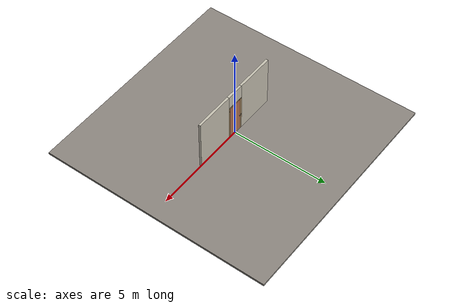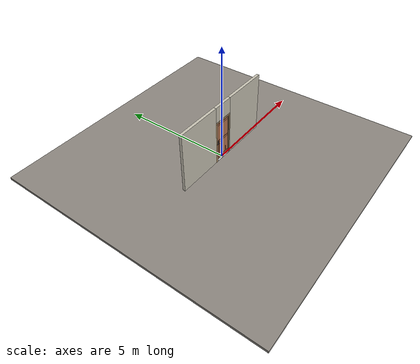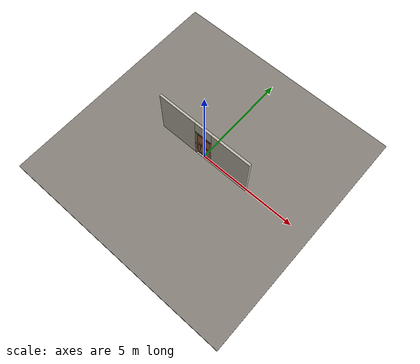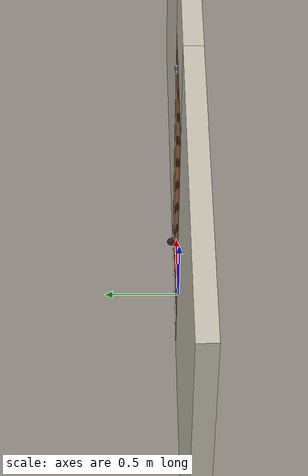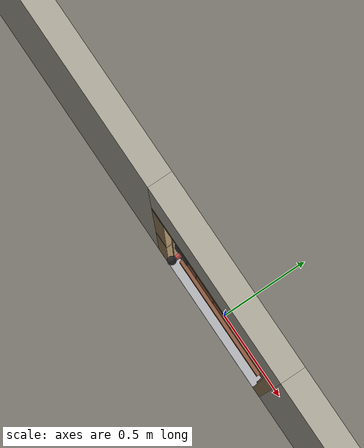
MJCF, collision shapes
<?xml version="1.0" ?>
<mujoco model="db0436_swing_single_full">
  <compiler angle="radian" meshdir="../../hardware" texturedir="../../textures" autolimits="true" inertiafromgeom="false"/>
  <option timestep="0.002" integrator="implicitfast" cone="elliptic" impratio="10" noslip_iterations="3">
    <flag multiccd="enable"/>
  </option>
  <size memory="16M"/>
  <default>
    <geom condim="4" solref="0.005 1" solimp="0.95 0.99 0.001"/>
    <joint solreflimit="0.005 1" solimplimit="0.95 0.99 0.001"/>
    <tendon solreflimit="0.005 1"/>
    <equality solref="0.002 1"/>
  </default>
  <visual>
    <headlight ambient="0.4 0.4 0.4" diffuse="0.7 0.7 0.7" specular="0.2 0.2 0.2"/>
    <quality shadowsize="4096"/>
    <map znear="0.01" zfar="60"/>
  </visual>
  <asset>
    <mesh name="knob_3926f4c53b" file="knob_3926f4c53b.obj"/>
    <mesh name="peephole_f829311a59" file="peephole_f829311a59.obj"/>
    <mesh name="strap_hinge_78d1bbb966" file="strap_hinge_78d1bbb966.obj"/>
    <material name="mat_floor" rgba="0.55 0.53 0.5 1" specular="0.2" shininess="0.15" reflectance="0"/>
    <material name="mat_wall" rgba="0.78 0.76 0.7 1" specular="0.2" shininess="0.1" reflectance="0"/>
    <material name="mat_leaf" rgba="0.7 0.45 0.32 1" specular="0.2" shininess="0.4" reflectance="0"/>
    <material name="mat_leaf_brace" rgba="0.63 0.405 0.288 1" specular="0.2" shininess="0.2" reflectance="0"/>
    <material name="mat_hinge" rgba="0.65 0.66 0.68 1" specular="0.74" shininess="0.5" reflectance="0.36"/>
    <material name="mat_op_cast_iron" rgba="0.15 0.15 0.16 1" specular="0.5" shininess="0.2" reflectance="0.2"/>
    <material name="mat_rim_case" rgba="0.15 0.15 0.16 1" specular="0.5" shininess="0.2" reflectance="0.2"/>
    <material name="mat_trim" rgba="0.85 0.66 0.3 1" specular="0.8" shininess="0.75" reflectance="0.4"/>
    <material name="mat_bolt" rgba="0.85 0.66 0.3 1" specular="0.8" shininess="0.75" reflectance="0.4"/>
    <material name="mat_frame" rgba="0.7 0.58 0.42 1" specular="0.2" shininess="0.5" reflectance="0"/>
    <material name="mat_threshold" rgba="0.8 0.81 0.83 1" specular="0.8" shininess="0.6" reflectance="0.4"/>
    <material name="mat_peephole" rgba="0.85 0.66 0.3 1" specular="0.8" shininess="0.75" reflectance="0.4"/>
    <texture name="skybox" type="skybox" builtin="gradient" rgb1="0.6 0.7 0.85" rgb2="0.9 0.92 0.95" width="256" height="256"/>
  </asset>
  <worldbody>
    <light name="sun" pos="1.5 -2.5 4" dir="-0.3 0.5 -0.8" directional="true" diffuse="0.8 0.8 0.8" specular="0.3 0.3 0.3" castshadow="true"/>
    <light name="fill" pos="-1.5 2.5 3" dir="0.3 -0.5 -0.7" directional="true" diffuse="0.35 0.35 0.4" castshadow="false"/>
    <camera name="robot_view" pos="0 -2.446938 1.633663" xyaxes="1 0 0 0 0.26963 0.962964" fovy="52"/>
    <camera name="far_view" pos="0 2.389937 1.633663" xyaxes="-1 0 0 0 -0.26963 0.962964" fovy="52"/>
    <camera name="iso" pos="-1.838012 -2.059988 2.020612" xyaxes="0.741536 -0.670913 0 0.242917 0.268487 0.932151" fovy="46"/>
    <camera name="detail_handle" pos="-0.14 -0.8995 1.194" xyaxes="0.97561 0.219512 0 -0.070934 0.315262 0.94635" fovy="38"/>
    <geom name="floor" type="box" size="6 6 0.05" pos="0 0 -0.05" material="mat_floor" group="0" contype="1" conaffinity="1" friction="0.8 0.005 0.0001" density="2400"/>
    <geom name="wall_left" type="box" size="1.0125 0.0575 1.35" pos="-1.4875 -0.0285 1.35" material="mat_wall" group="0" contype="1" conaffinity="1" friction="0.6 0.005 0.0001" density="800"/>
    <geom name="wall_right" type="box" size="1.0275 0.0575 1.35" pos="1.4725 -0.0285 1.35" material="mat_wall" group="0" contype="1" conaffinity="1" friction="0.6 0.005 0.0001" density="800"/>
    <geom name="wall_header" type="box" size="0.46 0.0575 0.3485" pos="-0.015 -0.0285 2.3515" material="mat_wall" group="0" contype="1" conaffinity="1" friction="0.6 0.005 0.0001" density="800"/>
    <geom name="hinge_pintle_0" type="cylinder" size="0.008 0.02" pos="0.382 0.029 0.141" material="mat_hinge" group="1" contype="0" conaffinity="0" density="7850"/>
    <geom name="hinge_pintle_1" type="cylinder" size="0.008 0.02" pos="0.382 0.029 1.733" material="mat_hinge" group="1" contype="0" conaffinity="0" density="7850"/>
    <geom name="jamb_hinge" type="box" size="0.03 0.0575 0.9565" pos="0.415 -0.0285 0.9565" material="mat_frame" group="0" contype="1" conaffinity="1" friction="0.6 0.005 0.0001" density="750"/>
    <geom name="strike_914_wall_n" type="box" size="0.045 0.039075 0.0167" pos="-0.43 -0.046925 0.914" material="mat_frame" group="0" contype="1" conaffinity="1" friction="0.6 0.005 0.0001" density="750"/>
    <geom name="strike_914_wall_p" type="box" size="0.045 0.008 0.0167" pos="-0.43 0.01585 0.914" material="mat_frame" group="0" contype="1" conaffinity="1" friction="0.6 0.005 0.0001" density="750"/>
    <geom name="strike_914_ramp" type="box" size="0.045 0.01649 0.0167" pos="-0.432784 0.020157 0.914" quat="0.977148 0 0 0.212558" material="mat_frame" group="0" contype="1" conaffinity="1" friction="0.12 0.005 0.0001" density="750"/>
    <geom name="strike_914_back" type="box" size="0.03665 0.00785 0.0167" pos="-0.43835 0 0.914" material="mat_frame" group="0" contype="1" conaffinity="1" friction="0.6 0.005 0.0001" density="750"/>
    <geom name="jamb_strike_0" type="box" size="0.045 0.0575 0.44865" pos="-0.43 -0.0285 0.44865" material="mat_frame" group="0" contype="1" conaffinity="1" friction="0.6 0.005 0.0001" density="750"/>
    <geom name="jamb_strike_1" type="box" size="0.045 0.0575 0.49115" pos="-0.43 -0.0285 1.42185" material="mat_frame" group="0" contype="1" conaffinity="1" friction="0.6 0.005 0.0001" density="750"/>
    <geom name="jamb_head" type="box" size="0.46 0.0575 0.03" pos="-0.015 -0.0285 1.943" material="mat_frame" group="0" contype="1" conaffinity="1" friction="0.6 0.005 0.0001" density="750"/>
    <geom name="head_stud" type="box" size="0.46 0.0575 0.015" pos="-0.015 -0.0285 1.988" material="mat_wall" group="0" contype="1" conaffinity="1" friction="0.6 0.005 0.0001" density="500"/>
    <geom name="stop_hinge" type="box" size="0.0055 0.016 0.9565" pos="0.3795 -0.0385 0.9565" material="mat_frame" group="0" contype="1" conaffinity="1" friction="0.6 0.005 0.0001" density="750"/>
    <geom name="stop_strike" type="box" size="0.0055 0.016 0.9565" pos="-0.3795 -0.0385 0.9565" material="mat_frame" group="0" contype="1" conaffinity="1" friction="0.6 0.005 0.0001" density="750"/>
    <geom name="stop_head" type="box" size="0.385 0.016 0.0055" pos="0 -0.0385 1.9075" material="mat_frame" group="0" contype="1" conaffinity="1" friction="0.6 0.005 0.0001" density="750"/>
    <geom name="threshold" type="box" size="0.445 0.0575 0.0065" pos="0 -0.0285 0.0065" material="mat_threshold" group="0" contype="1" conaffinity="1" friction="0.5 0.005 0.0001" density="2700"/>
    <geom name="hinge_pintle_0_strap_0" type="box" size="0.0064 0.02225 0.016" pos="0.382 -0.00075 0.141" material="mat_hinge" group="1" contype="0" conaffinity="0" density="7850"/>
    <geom name="hinge_pintle_1_strap_0" type="box" size="0.0064 0.02225 0.016" pos="0.382 -0.00075 1.733" material="mat_hinge" group="1" contype="0" conaffinity="0" density="7850"/>
    <site name="approach_point" pos="0 -1.5 0" quat="1 0 0 0" size="0.05" rgba="0.2 0.9 0.2 0.5" group="4"/>
    <site name="goal_point" pos="0 1.5 0" quat="1 0 0 0" size="0.05" rgba="0.2 0.9 0.2 0.5" group="4"/>
    <site name="door_plane_center" pos="0 0 0.9565" quat="1 0 0 0" size="0.02" rgba="0.2 0.9 0.2 0.5" group="4"/>
    <body name="leaf" pos="0.385 0 0">
      <inertial pos="-0.380404 0.000195 0.961103" mass="23.947109" quat="0.49583 0.505571 -0.494271 0.504229" diaginertia="1.26246656 7.437607765 8.688534754"/>
      <joint name="leaf_hinge" type="hinge" axis="0 0 -1" pos="-0.003 0.029 0" limited="true" range="0 1.396263" damping="0.165689" frictionloss="8.259781" armature="0.02"/>
      <geom name="leaf_slab" type="box" size="0.381 0.022 0.946" pos="-0.384 0 0.963" material="mat_leaf" group="0" contype="1" conaffinity="1" friction="0.35 0.005 0.0001" density="1"/>
      <geom name="leaf_plank_gap_1" type="box" size="0.002 0.023 0.936" pos="-0.1554 0 0.963" material="mat_leaf_brace" group="1" contype="0" conaffinity="0" density="1"/>
      <geom name="leaf_plank_gap_2" type="box" size="0.002 0.023 0.936" pos="-0.3078 0 0.963" material="mat_leaf_brace" group="1" contype="0" conaffinity="0" density="1"/>
      <geom name="leaf_plank_gap_3" type="box" size="0.002 0.023 0.936" pos="-0.4602 0 0.963" material="mat_leaf_brace" group="1" contype="0" conaffinity="0" density="1"/>
      <geom name="leaf_plank_gap_4" type="box" size="0.002 0.023 0.936" pos="-0.6126 0 0.963" material="mat_leaf_brace" group="1" contype="0" conaffinity="0" density="1"/>
      <geom name="leaf_batten_13" type="box" size="0.351 0.01 0.045" pos="-0.384 -0.032 0.137" material="mat_leaf_brace" group="1" contype="0" conaffinity="0" density="1"/>
      <geom name="leaf_batten_178" type="box" size="0.351 0.01 0.045" pos="-0.384 -0.032 1.789" material="mat_leaf_brace" group="1" contype="0" conaffinity="0" density="1"/>
      <geom name="leaf_batten_96" type="box" size="0.351 0.01 0.045" pos="-0.384 -0.032 0.963" material="mat_leaf_brace" group="1" contype="0" conaffinity="0" density="1"/>
      <geom name="hinge_strap_0" type="mesh" mesh="strap_hinge_78d1bbb966" pos="-0.003 0.025 0.167" quat="0 0 0 1" material="mat_hinge" group="1" contype="0" conaffinity="0" density="7850"/>
      <geom name="hinge_strap_eye_0" type="cylinder" size="0.011 0.012" pos="-0.003 0.029 0.167" material="mat_hinge" group="1" contype="0" conaffinity="0" density="7850"/>
      <geom name="hinge_strap_neck_0" type="box" size="0.012 0.006 0.006" pos="-0.003 0.027 0.167" material="mat_hinge" group="1" contype="0" conaffinity="0" density="7850"/>
      <geom name="hinge_strap_1" type="mesh" mesh="strap_hinge_78d1bbb966" pos="-0.003 0.025 1.759" quat="0 0 0 1" material="mat_hinge" group="1" contype="0" conaffinity="0" density="7850"/>
      <geom name="hinge_strap_eye_1" type="cylinder" size="0.011 0.012" pos="-0.003 0.029 1.759" material="mat_hinge" group="1" contype="0" conaffinity="0" density="7850"/>
      <geom name="hinge_strap_neck_1" type="box" size="0.012 0.006 0.006" pos="-0.003 0.027 1.759" material="mat_hinge" group="1" contype="0" conaffinity="0" density="7850"/>
      <geom name="leaf_handle_rim_case" type="box" size="0.05 0.015 0.08" pos="-0.701 -0.037 0.914" material="mat_rim_case" group="0" contype="1" conaffinity="1" friction="0.6 0.005 0.0001" density="2500"/>
      <geom name="leaf_latch_bolt_faceplate" type="box" size="0.0006 0.01235 0.0267" pos="-0.7644 0 0.914" material="mat_bolt" group="1" contype="0" conaffinity="0" density="8500"/>
      <geom name="peephole" type="mesh" mesh="peephole_f829311a59" pos="-0.384 -0.022 1.517" quat="0 0 -0.707107 0.707107" material="mat_peephole" group="2" contype="0" conaffinity="0" density="8500"/>
      <site name="leaf_edge_mid" pos="-0.765 0 0.946" quat="1 0 0 0" size="0.02" rgba="0.2 0.9 0.2 0.5" group="4"/>
      <body name="leaf_handle" pos="-0.705 0 0.914">
        <inertial pos="0 -0.013365 0" mass="0.977592" quat="0.5 0.5 0.5 0.5" diaginertia="0.000192203 0.005356868 0.005356868"/>
        <joint name="leaf_handle_hinge" type="hinge" axis="0 1 0" limited="true" range="0 0.85" damping="0.156401" frictionloss="0.052" stiffness="0.6" springref="-0.5" armature="0.01"/>
        <geom name="leaf_handle_spindle" type="cylinder" size="0.006 0.06" pos="0 0 0" quat="0.707107 -0.707107 0 0" material="mat_op_cast_iron" group="1" contype="0" conaffinity="0" density="7850"/>
        <geom name="leaf_handle_knob_n" type="mesh" mesh="knob_3926f4c53b" pos="0 -0.052 0" quat="0 0 -0.707107 0.707107" material="mat_op_cast_iron" group="1" contype="0" conaffinity="0" density="3000"/>
        <geom name="leaf_handle_knob_col_n" type="sphere" size="0.0225" pos="0 -0.0995 0" material="mat_op_cast_iron" group="0" contype="1" conaffinity="1" friction="0.9 0.01 0.0001" density="3000"/>
        <geom name="leaf_handle_knob_neck_n" type="cylinder" size="0.011 0.012" pos="0 -0.064 0" quat="0.707107 -0.707107 0 0" material="mat_op_cast_iron" group="3" contype="1" conaffinity="1" rgba="0.8 0.3 0.3 0.25" friction="0.6 0.005 0.0001" density="3000"/>
        <geom name="leaf_handle_knob_p" type="mesh" mesh="knob_3926f4c53b" pos="0 0.022 0" quat="0 0 0.707107 0.707107" material="mat_op_cast_iron" group="1" contype="0" conaffinity="0" density="3000"/>
        <geom name="leaf_handle_knob_col_p" type="sphere" size="0.0225" pos="0 0.0695 0" material="mat_op_cast_iron" group="0" contype="1" conaffinity="1" friction="0.9 0.01 0.0001" density="3000"/>
        <geom name="leaf_handle_knob_neck_p" type="cylinder" size="0.011 0.012" pos="0 0.034 0" quat="0.707107 -0.707107 0 0" material="mat_op_cast_iron" group="3" contype="1" conaffinity="1" rgba="0.8 0.3 0.3 0.25" friction="0.6 0.005 0.0001" density="3000"/>
        <site name="leaf_handle_grip_n" pos="0 -0.0995 0" quat="1 0 0 0" size="0.012" rgba="0.2 0.9 0.2 0.5" group="4"/>
        <site name="leaf_handle_grip_p" pos="0 0.0695 0" quat="1 0 0 0" size="0.012" rgba="0.2 0.9 0.2 0.5" group="4"/>
      </body>
      <body name="leaf_latch_bolt" pos="-0.765 0 0.914">
        <inertial pos="0.00865 0 0" mass="0.041419" quat="0.92388 0.382683 0 0" diaginertia="0.000000798 0.000005598 0.000005598"/>
        <joint name="leaf_latch_bolt_slide" type="slide" axis="1 0 0" limited="true" range="0 0.0127" damping="2" frictionloss="0.3" stiffness="300" springref="-0.008333" armature="0.1"/>
        <geom name="leaf_latch_bolt_capsule" type="capsule" size="0.00635 0.015" pos="0.00865 0 0" quat="0.707107 0 -0.707107 0" material="mat_bolt" group="0" contype="1" conaffinity="1" friction="0.2 0.005 0.0001" density="8500"/>
      </body>
    </body>
  </worldbody>
  <tendon>
    <fixed name="leaf_latch_bolt_coupling" limited="true" range="0 10">
      <joint joint="leaf_latch_bolt_slide" coef="1"/>
      <joint joint="leaf_handle_hinge" coef="-0.016494"/>
    </fixed>
  </tendon>
  <sensor>
    <jointpos name="leaf_hinge_pos" joint="leaf_hinge"/>
    <jointvel name="leaf_hinge_vel" joint="leaf_hinge"/>
    <jointpos name="leaf_handle_hinge_pos" joint="leaf_handle_hinge"/>
    <jointvel name="leaf_handle_hinge_vel" joint="leaf_handle_hinge"/>
    <jointpos name="leaf_latch_bolt_slide_pos" joint="leaf_latch_bolt_slide"/>
    <jointvel name="leaf_latch_bolt_slide_vel" joint="leaf_latch_bolt_slide"/>
  </sensor>
</mujoco>
